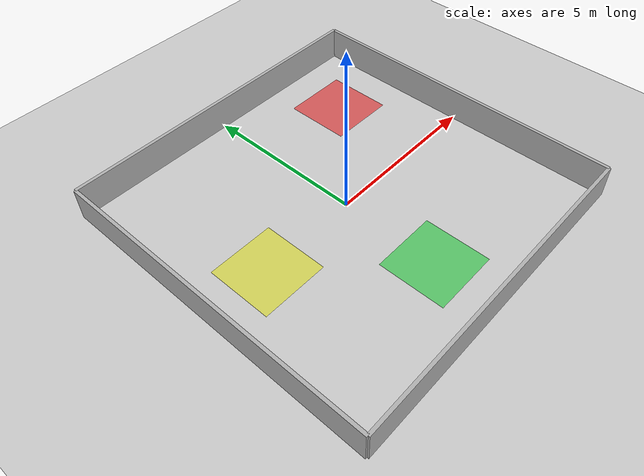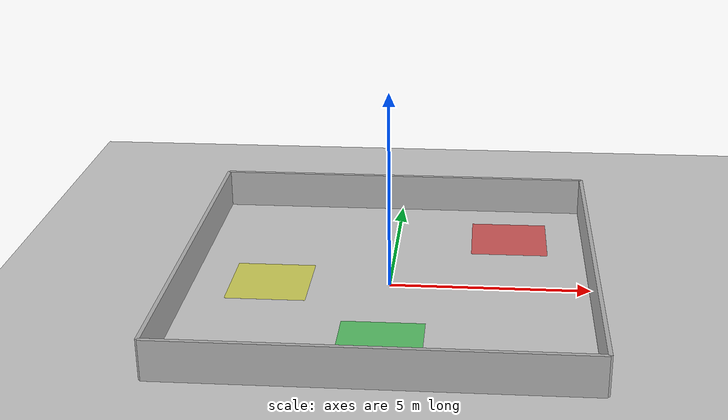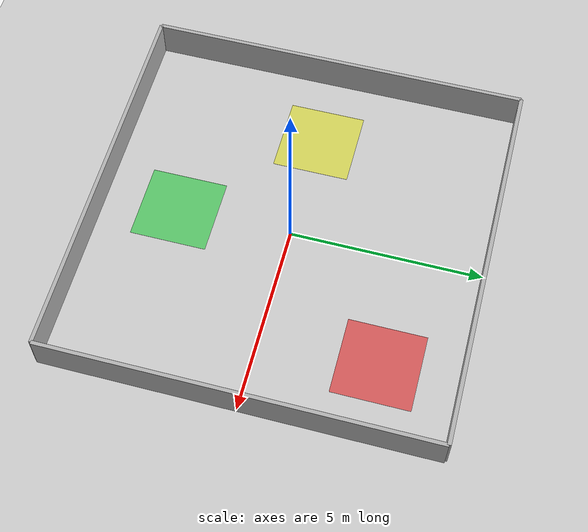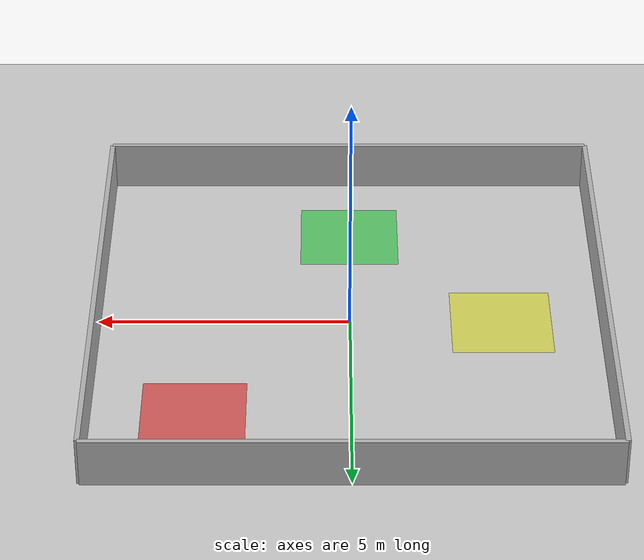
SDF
<?xml version="1.0"?>
<sdf version="1.6">
  <world name="verify_core_demo">
    <!-- Ground plane -->
    <include>
      <uri>model://ground_plane</uri>
    </include>

    <!-- Sun -->
    <include>
      <uri>model://sun</uri>
    </include>

    <!-- Normal operating area walls -->
    <model name="wall_north">
      <static>true</static>
      <pose>0 5 0.5 0 0 0</pose>
      <link name="link">
        <collision name="collision">
          <geometry><box><size>10 0.1 1</size></box></geometry>
        </collision>
        <visual name="visual">
          <geometry><box><size>10 0.1 1</size></box></geometry>
          <material><ambient>0.7 0.7 0.7 1</ambient></material>
        </visual>
      </link>
    </model>

    <model name="wall_south">
      <static>true</static>
      <pose>0 -5 0.5 0 0 0</pose>
      <link name="link">
        <collision name="collision">
          <geometry><box><size>10 0.1 1</size></box></geometry>
        </collision>
        <visual name="visual">
          <geometry><box><size>10 0.1 1</size></box></geometry>
          <material><ambient>0.7 0.7 0.7 1</ambient></material>
        </visual>
      </link>
    </model>

    <model name="wall_east">
      <static>true</static>
      <pose>5 0 0.5 0 0 0</pose>
      <link name="link">
        <collision name="collision">
          <geometry><box><size>0.1 10 1</size></box></geometry>
        </collision>
        <visual name="visual">
          <geometry><box><size>0.1 10 1</size></box></geometry>
          <material><ambient>0.7 0.7 0.7 1</ambient></material>
        </visual>
      </link>
    </model>

    <model name="wall_west">
      <static>true</static>
      <pose>-5 0 0.5 0 0 0</pose>
      <link name="link">
        <collision name="collision">
          <geometry><box><size>0.1 10 1</size></box></geometry>
        </collision>
        <visual name="visual">
          <geometry><box><size>0.1 10 1</size></box></geometry>
          <material><ambient>0.7 0.7 0.7 1</ambient></material>
        </visual>
      </link>
    </model>

    <!-- RESTRICTED ZONE marker (red floor area: x=2..4, y=2..4) -->
    <model name="restricted_zone">
      <static>true</static>
      <pose>3 3 0.001 0 0 0</pose>
      <link name="link">
        <visual name="visual">
          <geometry><box><size>2 2 0.002</size></box></geometry>
          <material>
            <ambient>0.9 0.1 0.1 0.6</ambient>
            <diffuse>0.9 0.1 0.1 0.6</diffuse>
          </material>
        </visual>
      </link>
    </model>

    <!-- HUMAN ZONE marker (yellow floor area: x=-4..-2, y=-1..1) -->
    <model name="human_zone">
      <static>true</static>
      <pose>-3 0 0.001 0 0 0</pose>
      <link name="link">
        <visual name="visual">
          <geometry><box><size>2 2 0.002</size></box></geometry>
          <material>
            <ambient>0.9 0.9 0.1 0.6</ambient>
            <diffuse>0.9 0.9 0.1 0.6</diffuse>
          </material>
        </visual>
      </link>
    </model>

    <!-- LOADING DOCK marker (green floor area: x=-1..1, y=-4..-2) -->
    <model name="loading_dock">
      <static>true</static>
      <pose>0 -3 0.001 0 0 0</pose>
      <link name="link">
        <visual name="visual">
          <geometry><box><size>2 2 0.002</size></box></geometry>
          <material>
            <ambient>0.1 0.8 0.2 0.6</ambient>
            <diffuse>0.1 0.8 0.2 0.6</diffuse>
          </material>
        </visual>
      </link>
    </model>
  </world>
</sdf>
